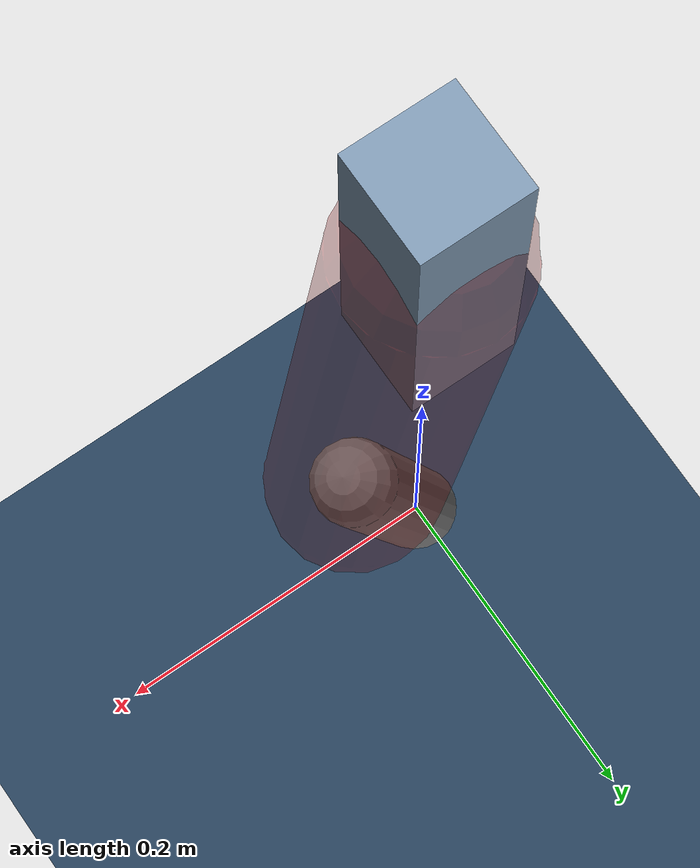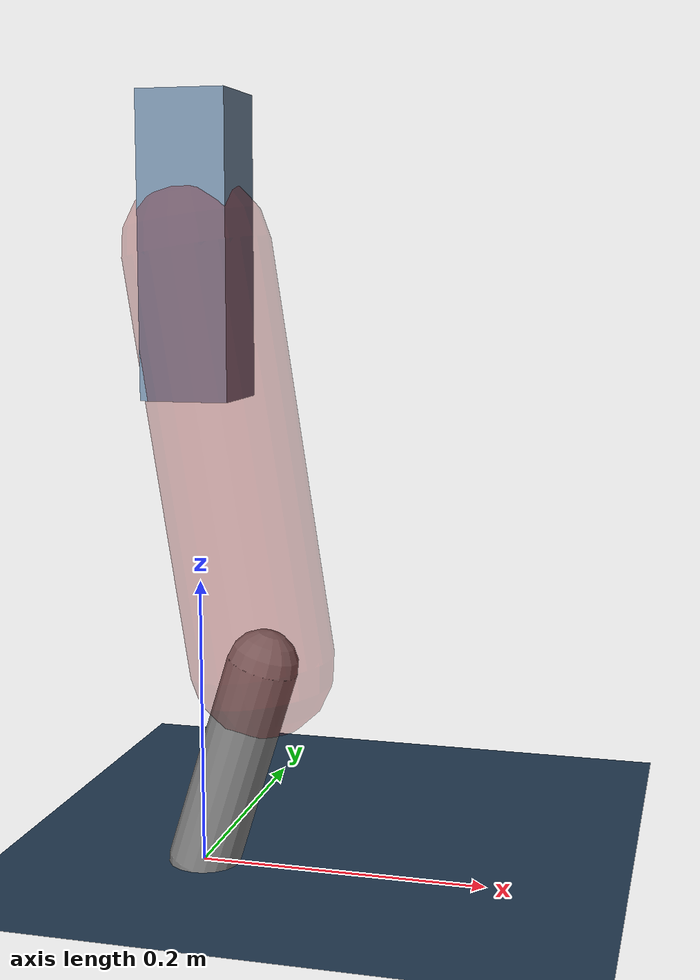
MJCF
<mujoco model="Hopper2D">
	<compiler inertiafromgeom="true" angle="radian" />
	<option timestep="0.001" integrator="implicit" cone="elliptic" solver="Newton" tolerance="1e-10" />

	<default>
		<geom contype="1" conaffinity="1" condim="3" friction="2 0.005 0.0001" solref="0.005 1" />
		<joint limited="true" damping="0.1" />
	</default>

	<asset>
		<texture name="skybox" type="skybox" builtin="gradient" rgb1=".4 .6 .8" rgb2="0 0 0" width="800" height="800" />
		<texture name="grid" type="2d" builtin="checker" rgb1=".1 .2 .3" rgb2=".2 .3 .4" width="300" height="300" mark="edge" markrgb=".2 .3 .4" />
		<material name="ground" texture="grid" texrepeat="1 1" texuniform="true" reflectance="0.1" />
		<material name="leg" rgba="0.5 0.6 0.7 1" />
	</asset>

	<worldbody>

		<geom name="floor" type="plane" size="5 5 0.25" material="ground" />

		<light directional="false" diffuse="0.8 0.8 0.8" specular="0.3 0.3 0.3" pos="0 0 2" dir="0 0 -1" />
		<light mode="targetbodycom" target="base" directional="false" diffuse="0.8 0.8 0.8" specular="0.3 0.3 0.3" pos="0 0 2" dir="0 0 -1" />

		<camera name="fixed" pos="0 -2 1" xyaxes="1 0 0 0 0 1" />
		<camera name="tracking" mode="trackcom" pos="0 -3 1" />

		<body name="root" pos="0 0 0.42592301101894514">
			<joint name="slide_x" type="slide" axis="1 0 0" range="-100 100" />
			<joint name="slide_z" type="slide" axis="0 0 1" range="0 10" />

			<body name="base" pos="0 0 0">
				<geom name="torso" type="box" size="0.03 0.03 0.1" mass="1.821" material="leg" />

				<body name="link1" pos="0 0 0" euler="0 1.4160594868746668 0">
					<joint type="hinge" axis="0 -1 0" pos="0 0 0" name="hinge1" limited="true" range="-3.14 3.14" stiffness="0" damping="0.1" />
					<geom name="thigh" type="capsule" fromto="0 0 0 0.2855898750700062 0 0" size="0.05" rgba="0.5 0 0 0.3" mass="0.9499926626890168" />

					<body name="link2" pos="0.2855898750700062 0 0" euler="0 0.4518739750863033 0">
						<joint type="hinge" axis="0 -1 0" pos="0 0 0" name="hinge2" limited="true" range="-3.14 3.14" stiffness="0" damping="0.1" />
						<geom name="shank" type="capsule" fromto="0 0 0 0.1503331359489389 0 0" size="0.025" mass="0.35799982235404504" />

					</body>
				</body>
			</body>
		</body>
	</worldbody>

	<actuator>
		<motor name="torque1" joint="hinge1" ctrlrange="-54.545672861662766 54.545672861662766" ctrllimited="true" gear="1" />
		<motor name="torque2" joint="hinge2" ctrlrange="-38.17267291668997 38.17267291668997" ctrllimited="true" gear="1" />
	</actuator>
</mujoco>
